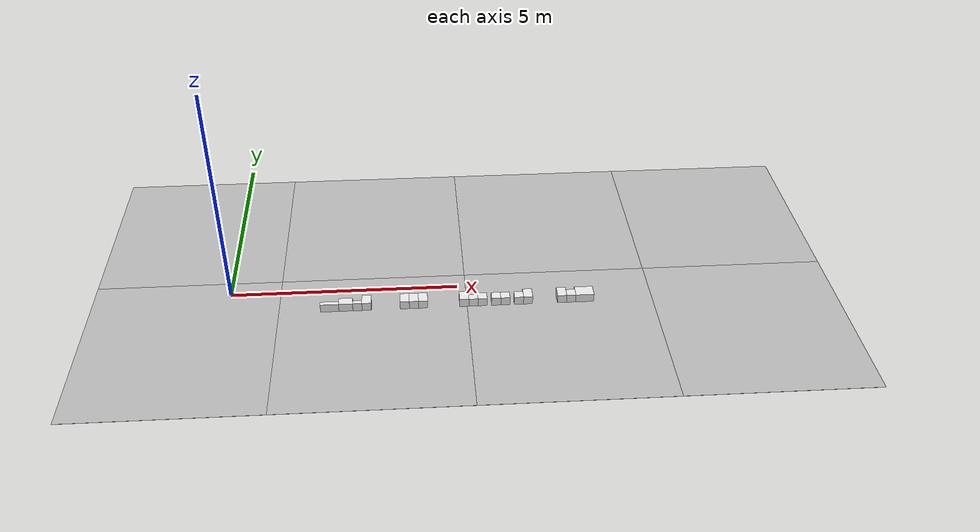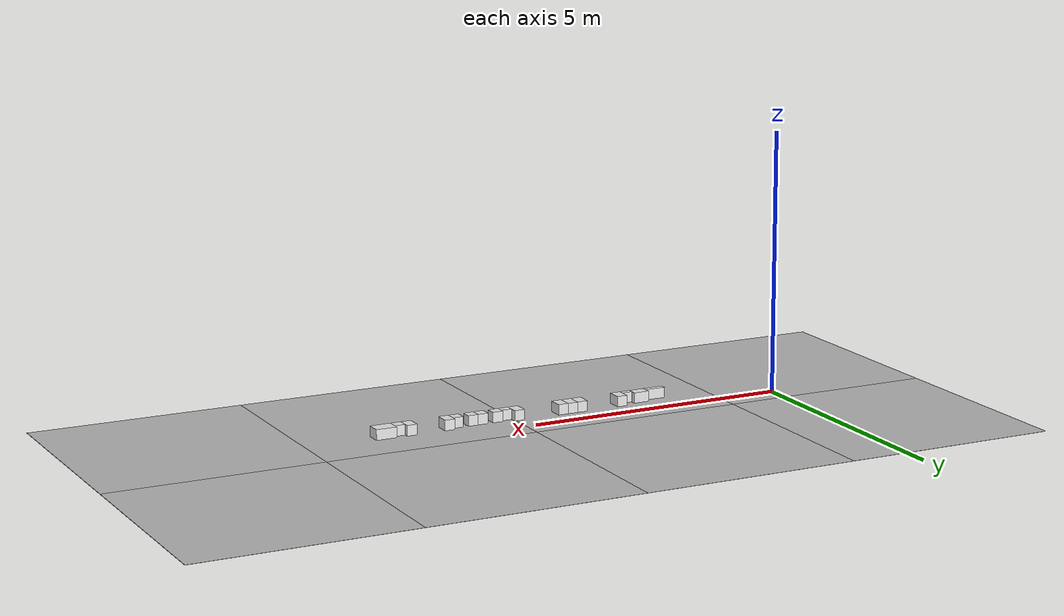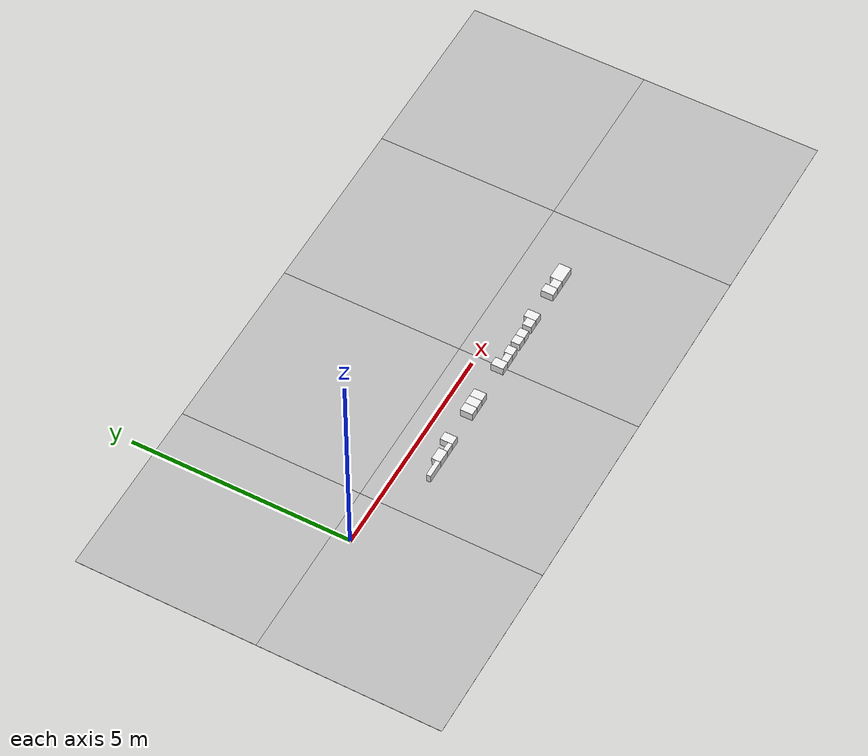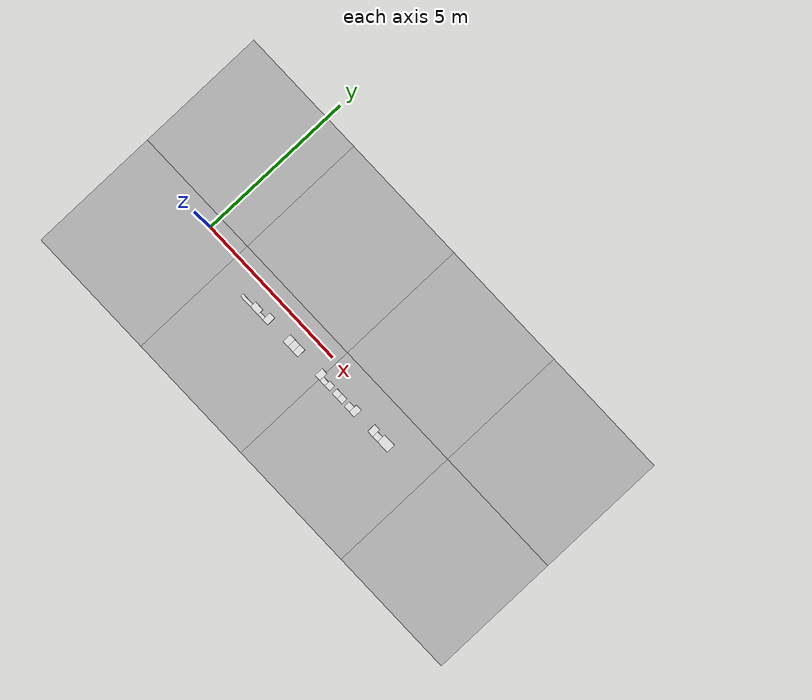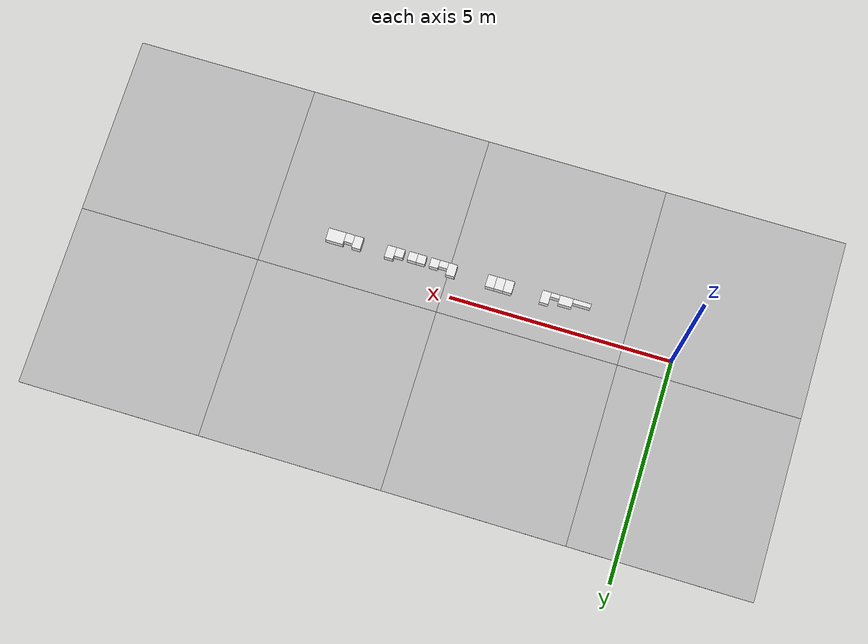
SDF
<sdf version='1.6'><world name='default'>
    <light name='sun_light' type='directional'>
      <pose frame=''>0 0 10 0 -0 0</pose>
      <diffuse>0.5 0.5 0.5 1</diffuse>
      <specular>0.1 0.1 0.1 1</specular>
      <direction>0.1 0.1 -0.9</direction>
      <attenuation>
        <range>20</range>
        <constant>0.5</constant>
        <linear>0.01</linear>
        <quadratic>0.001</quadratic>
      </attenuation>
      <cast_shadows>1</cast_shadows>
    </light>

    <model name='Tile/0-0'>
      <static>1</static>
      <link name='link'>
        <collision name='collision'>
          <geometry>
            <plane>
              <normal>0 0 1</normal>
              <size>4.096 4.096</size>
            </plane>
          </geometry>
          <surface>
            <friction>
              <ode>
                <mu>100</mu>
                <mu2>50</mu2>
              </ode>
              <torsional>
                <ode/>
              </torsional>
            </friction>
            <contact>
              <ode/>
            </contact>
            <bounce/>
          </surface>
          <max_contacts>10</max_contacts>
        </collision>
        <visual name='visual'>
          <cast_shadows>0</cast_shadows>
          <geometry>
            <plane>
              <normal>0 0 1</normal>
              <size>4.096 4.096</size>
            </plane>
          </geometry>
          <material>
            <script>
              <uri>file://materials/scripts</uri>
              <uri>file://materials/textures</uri>
              <name>Tile/aa44efc093d15b0d016b671cb8dad8b9b5925cd42bc6b331ef31decf4ba6863e</name>
            </script>
          </material>
        </visual>
        <self_collide>0</self_collide>
        <enable_wind>0</enable_wind>
        <kinematic>0</kinematic>
      </link>
      <pose frame=''>-0.952 -1.6520000000000001 0 0 -0 0</pose>
    </model>

    <model name='Tile/0-1'>
      <static>1</static>
      <link name='link'>
        <collision name='collision'>
          <geometry>
            <plane>
              <normal>0 0 1</normal>
              <size>4.096 4.096</size>
            </plane>
          </geometry>
          <surface>
            <friction>
              <ode>
                <mu>100</mu>
                <mu2>50</mu2>
              </ode>
              <torsional>
                <ode/>
              </torsional>
            </friction>
            <contact>
              <ode/>
            </contact>
            <bounce/>
          </surface>
          <max_contacts>10</max_contacts>
        </collision>
        <visual name='visual'>
          <cast_shadows>0</cast_shadows>
          <geometry>
            <plane>
              <normal>0 0 1</normal>
              <size>4.096 4.096</size>
            </plane>
          </geometry>
          <material>
            <script>
              <uri>file://materials/scripts</uri>
              <uri>file://materials/textures</uri>
              <name>Tile/6681b896b1587d54cb69aadeb5fb7247b4d6d500490292053e67105ac88ca889</name>
            </script>
          </material>
        </visual>
        <self_collide>0</self_collide>
        <enable_wind>0</enable_wind>
        <kinematic>0</kinematic>
      </link>
      <pose frame=''>-0.952 2.444 0 0 -0 0</pose>
    </model>

    <model name='Tile/1-0'>
      <static>1</static>
      <link name='link'>
        <collision name='collision'>
          <geometry>
            <plane>
              <normal>0 0 1</normal>
              <size>4.096 4.096</size>
            </plane>
          </geometry>
          <surface>
            <friction>
              <ode>
                <mu>100</mu>
                <mu2>50</mu2>
              </ode>
              <torsional>
                <ode/>
              </torsional>
            </friction>
            <contact>
              <ode/>
            </contact>
            <bounce/>
          </surface>
          <max_contacts>10</max_contacts>
        </collision>
        <visual name='visual'>
          <cast_shadows>0</cast_shadows>
          <geometry>
            <plane>
              <normal>0 0 1</normal>
              <size>4.096 4.096</size>
            </plane>
          </geometry>
          <material>
            <script>
              <uri>file://materials/scripts</uri>
              <uri>file://materials/textures</uri>
              <name>Tile/eac2e5be5d13b0e8a2cf2cacb9a2c81a775ff621da0c8b18af98c29163fb5643</name>
            </script>
          </material>
        </visual>
        <self_collide>0</self_collide>
        <enable_wind>0</enable_wind>
        <kinematic>0</kinematic>
      </link>
      <pose frame=''>3.144 -1.6520000000000001 0 0 -0 0</pose>
    </model>

    <model name='Tile/1-1'>
      <static>1</static>
      <link name='link'>
        <collision name='collision'>
          <geometry>
            <plane>
              <normal>0 0 1</normal>
              <size>4.096 4.096</size>
            </plane>
          </geometry>
          <surface>
            <friction>
              <ode>
                <mu>100</mu>
                <mu2>50</mu2>
              </ode>
              <torsional>
                <ode/>
              </torsional>
            </friction>
            <contact>
              <ode/>
            </contact>
            <bounce/>
          </surface>
          <max_contacts>10</max_contacts>
        </collision>
        <visual name='visual'>
          <cast_shadows>0</cast_shadows>
          <geometry>
            <plane>
              <normal>0 0 1</normal>
              <size>4.096 4.096</size>
            </plane>
          </geometry>
          <material>
            <script>
              <uri>file://materials/scripts</uri>
              <uri>file://materials/textures</uri>
              <name>Tile/13957a6de1f2afce18d7f1f64dacc2f21295e26ccf498256b0e1a51002cd5706</name>
            </script>
          </material>
        </visual>
        <self_collide>0</self_collide>
        <enable_wind>0</enable_wind>
        <kinematic>0</kinematic>
      </link>
      <pose frame=''>3.144 2.444 0 0 -0 0</pose>
    </model>

    <model name='Tile/2-0'>
      <static>1</static>
      <link name='link'>
        <collision name='collision'>
          <geometry>
            <plane>
              <normal>0 0 1</normal>
              <size>4.096 4.096</size>
            </plane>
          </geometry>
          <surface>
            <friction>
              <ode>
                <mu>100</mu>
                <mu2>50</mu2>
              </ode>
              <torsional>
                <ode/>
              </torsional>
            </friction>
            <contact>
              <ode/>
            </contact>
            <bounce/>
          </surface>
          <max_contacts>10</max_contacts>
        </collision>
        <visual name='visual'>
          <cast_shadows>0</cast_shadows>
          <geometry>
            <plane>
              <normal>0 0 1</normal>
              <size>4.096 4.096</size>
            </plane>
          </geometry>
          <material>
            <script>
              <uri>file://materials/scripts</uri>
              <uri>file://materials/textures</uri>
              <name>Tile/d8668b8f5941058ba5019b295a7eaf723689db8f8c3a860f50cbb11693da5ad2</name>
            </script>
          </material>
        </visual>
        <self_collide>0</self_collide>
        <enable_wind>0</enable_wind>
        <kinematic>0</kinematic>
      </link>
      <pose frame=''>7.24 -1.6520000000000001 0 0 -0 0</pose>
    </model>

    <model name='Tile/2-1'>
      <static>1</static>
      <link name='link'>
        <collision name='collision'>
          <geometry>
            <plane>
              <normal>0 0 1</normal>
              <size>4.096 4.096</size>
            </plane>
          </geometry>
          <surface>
            <friction>
              <ode>
                <mu>100</mu>
                <mu2>50</mu2>
              </ode>
              <torsional>
                <ode/>
              </torsional>
            </friction>
            <contact>
              <ode/>
            </contact>
            <bounce/>
          </surface>
          <max_contacts>10</max_contacts>
        </collision>
        <visual name='visual'>
          <cast_shadows>0</cast_shadows>
          <geometry>
            <plane>
              <normal>0 0 1</normal>
              <size>4.096 4.096</size>
            </plane>
          </geometry>
          <material>
            <script>
              <uri>file://materials/scripts</uri>
              <uri>file://materials/textures</uri>
              <name>Tile/13957a6de1f2afce18d7f1f64dacc2f21295e26ccf498256b0e1a51002cd5706</name>
            </script>
          </material>
        </visual>
        <self_collide>0</self_collide>
        <enable_wind>0</enable_wind>
        <kinematic>0</kinematic>
      </link>
      <pose frame=''>7.24 2.444 0 0 -0 0</pose>
    </model>

    <model name='Tile/3-0'>
      <static>1</static>
      <link name='link'>
        <collision name='collision'>
          <geometry>
            <plane>
              <normal>0 0 1</normal>
              <size>4.096 4.096</size>
            </plane>
          </geometry>
          <surface>
            <friction>
              <ode>
                <mu>100</mu>
                <mu2>50</mu2>
              </ode>
              <torsional>
                <ode/>
              </torsional>
            </friction>
            <contact>
              <ode/>
            </contact>
            <bounce/>
          </surface>
          <max_contacts>10</max_contacts>
        </collision>
        <visual name='visual'>
          <cast_shadows>0</cast_shadows>
          <geometry>
            <plane>
              <normal>0 0 1</normal>
              <size>4.096 4.096</size>
            </plane>
          </geometry>
          <material>
            <script>
              <uri>file://materials/scripts</uri>
              <uri>file://materials/textures</uri>
              <name>Tile/6f6040bef4d42f9d15bfe1cac2798321f0b066d3c6650b2501bf7cefd4cde4eb</name>
            </script>
          </material>
        </visual>
        <self_collide>0</self_collide>
        <enable_wind>0</enable_wind>
        <kinematic>0</kinematic>
      </link>
      <pose frame=''>11.336 -1.6520000000000001 0 0 -0 0</pose>
    </model>

    <model name='Tile/3-1'>
      <static>1</static>
      <link name='link'>
        <collision name='collision'>
          <geometry>
            <plane>
              <normal>0 0 1</normal>
              <size>4.096 4.096</size>
            </plane>
          </geometry>
          <surface>
            <friction>
              <ode>
                <mu>100</mu>
                <mu2>50</mu2>
              </ode>
              <torsional>
                <ode/>
              </torsional>
            </friction>
            <contact>
              <ode/>
            </contact>
            <bounce/>
          </surface>
          <max_contacts>10</max_contacts>
        </collision>
        <visual name='visual'>
          <cast_shadows>0</cast_shadows>
          <geometry>
            <plane>
              <normal>0 0 1</normal>
              <size>4.096 4.096</size>
            </plane>
          </geometry>
          <material>
            <script>
              <uri>file://materials/scripts</uri>
              <uri>file://materials/textures</uri>
              <name>Tile/645e4de11e43fb4a2eacb9a8c7d717bcfff32a13dfbd190f93559dca6052abb8</name>
            </script>
          </material>
        </visual>
        <self_collide>0</self_collide>
        <enable_wind>0</enable_wind>
        <kinematic>0</kinematic>
      </link>
      <pose frame=''>11.336 2.444 0 0 -0 0</pose>
    </model>

    <model name='Obstacle/-5/0'>
      <pose frame=''>2.2 -0.6499999999999999 0.1 0 0 -0.0</pose>
      <link name='link'>
        <inertial>
          <mass>10</mass>
          <inertia>
            <ixx>0.166667</ixx>
            <ixy>0</ixy>
            <ixz>0</ixz>
            <iyy>0.166667</iyy>
            <iyz>0</iyz>
            <izz>0.166667</izz>
          </inertia>
        </inertial>
        <collision name='collision'>
          <geometry>
            <box>
              <size>0.4 0.1 0.2</size>
            </box>
          </geometry>
          <max_contacts>10</max_contacts>
          <surface>
            <contact>
              <ode/>
            </contact>
            <bounce/>
            <friction>
              <torsional>
                <ode/>
              </torsional>
              <ode/>
            </friction>
          </surface>
        </collision>
        <visual name='visual'>
          <geometry>
            <box>
              <size>0.4 0.1 0.2</size>
            </box>
          </geometry>
          <material>
            <script>
              <name>Gazebo/White</name>
              <uri>file://media/materials/scripts/gazebo.material</uri>
            </script>
          </material>
        </visual>
        <self_collide>0</self_collide>
        <enable_wind>0</enable_wind>
        <kinematic>0</kinematic>
      </link>
    </model>

    <model name='Obstacle/-9/0'>
      <pose frame=''>2.55 -0.6 0.1 0 0 -0.0</pose>
      <link name='link'>
        <inertial>
          <mass>10</mass>
          <inertia>
            <ixx>0.166667</ixx>
            <ixy>0</ixy>
            <ixz>0</ixz>
            <iyy>0.166667</iyy>
            <iyz>0</iyz>
            <izz>0.166667</izz>
          </inertia>
        </inertial>
        <collision name='collision'>
          <geometry>
            <box>
              <size>0.3 0.2 0.2</size>
            </box>
          </geometry>
          <max_contacts>10</max_contacts>
          <surface>
            <contact>
              <ode/>
            </contact>
            <bounce/>
            <friction>
              <torsional>
                <ode/>
              </torsional>
              <ode/>
            </friction>
          </surface>
        </collision>
        <visual name='visual'>
          <geometry>
            <box>
              <size>0.3 0.2 0.2</size>
            </box>
          </geometry>
          <material>
            <script>
              <name>Gazebo/White</name>
              <uri>file://media/materials/scripts/gazebo.material</uri>
            </script>
          </material>
        </visual>
        <self_collide>0</self_collide>
        <enable_wind>0</enable_wind>
        <kinematic>0</kinematic>
      </link>
    </model>

    <model name='Obstacle/-13/0'>
      <pose frame=''>2.8 -0.6499999999999999 0.1 0 0 -0.0</pose>
      <link name='link'>
        <inertial>
          <mass>10</mass>
          <inertia>
            <ixx>0.166667</ixx>
            <ixy>0</ixy>
            <ixz>0</ixz>
            <iyy>0.166667</iyy>
            <iyz>0</iyz>
            <izz>0.166667</izz>
          </inertia>
        </inertial>
        <collision name='collision'>
          <geometry>
            <box>
              <size>0.2 0.1 0.2</size>
            </box>
          </geometry>
          <max_contacts>10</max_contacts>
          <surface>
            <contact>
              <ode/>
            </contact>
            <bounce/>
            <friction>
              <torsional>
                <ode/>
              </torsional>
              <ode/>
            </friction>
          </surface>
        </collision>
        <visual name='visual'>
          <geometry>
            <box>
              <size>0.2 0.1 0.2</size>
            </box>
          </geometry>
          <material>
            <script>
              <name>Gazebo/White</name>
              <uri>file://media/materials/scripts/gazebo.material</uri>
            </script>
          </material>
        </visual>
        <self_collide>0</self_collide>
        <enable_wind>0</enable_wind>
        <kinematic>0</kinematic>
      </link>
    </model>

    <model name='Obstacle/-17/0'>
      <pose frame=''>3.0 -0.5599999999999999 0.1 0 0 -0.0</pose>
      <link name='link'>
        <inertial>
          <mass>10</mass>
          <inertia>
            <ixx>0.166667</ixx>
            <ixy>0</ixy>
            <ixz>0</ixz>
            <iyy>0.166667</iyy>
            <iyz>0</iyz>
            <izz>0.166667</izz>
          </inertia>
        </inertial>
        <collision name='collision'>
          <geometry>
            <box>
              <size>0.2 0.28 0.2</size>
            </box>
          </geometry>
          <max_contacts>10</max_contacts>
          <surface>
            <contact>
              <ode/>
            </contact>
            <bounce/>
            <friction>
              <torsional>
                <ode/>
              </torsional>
              <ode/>
            </friction>
          </surface>
        </collision>
        <visual name='visual'>
          <geometry>
            <box>
              <size>0.2 0.28 0.2</size>
            </box>
          </geometry>
          <material>
            <script>
              <name>Gazebo/White</name>
              <uri>file://media/materials/scripts/gazebo.material</uri>
            </script>
          </material>
        </visual>
        <self_collide>0</self_collide>
        <enable_wind>0</enable_wind>
        <kinematic>0</kinematic>
      </link>
    </model>

    <model name='Obstacle/-24/0'>
      <pose frame=''>3.83 -0.5599999999999999 0.1 0 0 -0.0</pose>
      <link name='link'>
        <inertial>
          <mass>10</mass>
          <inertia>
            <ixx>0.166667</ixx>
            <ixy>0</ixy>
            <ixz>0</ixz>
            <iyy>0.166667</iyy>
            <iyz>0</iyz>
            <izz>0.166667</izz>
          </inertia>
        </inertial>
        <collision name='collision'>
          <geometry>
            <box>
              <size>0.2 0.28 0.2</size>
            </box>
          </geometry>
          <max_contacts>10</max_contacts>
          <surface>
            <contact>
              <ode/>
            </contact>
            <bounce/>
            <friction>
              <torsional>
                <ode/>
              </torsional>
              <ode/>
            </friction>
          </surface>
        </collision>
        <visual name='visual'>
          <geometry>
            <box>
              <size>0.2 0.28 0.2</size>
            </box>
          </geometry>
          <material>
            <script>
              <name>Gazebo/White</name>
              <uri>file://media/materials/scripts/gazebo.material</uri>
            </script>
          </material>
        </visual>
        <self_collide>0</self_collide>
        <enable_wind>0</enable_wind>
        <kinematic>0</kinematic>
      </link>
    </model>

    <model name='Obstacle/-28/0'>
      <pose frame=''>4.03 -0.5599999999999999 0.1 0 0 -0.0</pose>
      <link name='link'>
        <inertial>
          <mass>10</mass>
          <inertia>
            <ixx>0.166667</ixx>
            <ixy>0</ixy>
            <ixz>0</ixz>
            <iyy>0.166667</iyy>
            <iyz>0</iyz>
            <izz>0.166667</izz>
          </inertia>
        </inertial>
        <collision name='collision'>
          <geometry>
            <box>
              <size>0.2 0.28 0.2</size>
            </box>
          </geometry>
          <max_contacts>10</max_contacts>
          <surface>
            <contact>
              <ode/>
            </contact>
            <bounce/>
            <friction>
              <torsional>
                <ode/>
              </torsional>
              <ode/>
            </friction>
          </surface>
        </collision>
        <visual name='visual'>
          <geometry>
            <box>
              <size>0.2 0.28 0.2</size>
            </box>
          </geometry>
          <material>
            <script>
              <name>Gazebo/White</name>
              <uri>file://media/materials/scripts/gazebo.material</uri>
            </script>
          </material>
        </visual>
        <self_collide>0</self_collide>
        <enable_wind>0</enable_wind>
        <kinematic>0</kinematic>
      </link>
    </model>

    <model name='Obstacle/-32/0'>
      <pose frame=''>4.2299999999999995 -0.5599999999999999 0.1 0 0 -0.0</pose>
      <link name='link'>
        <inertial>
          <mass>10</mass>
          <inertia>
            <ixx>0.166667</ixx>
            <ixy>0</ixy>
            <ixz>0</ixz>
            <iyy>0.166667</iyy>
            <iyz>0</iyz>
            <izz>0.166667</izz>
          </inertia>
        </inertial>
        <collision name='collision'>
          <geometry>
            <box>
              <size>0.2 0.28 0.2</size>
            </box>
          </geometry>
          <max_contacts>10</max_contacts>
          <surface>
            <contact>
              <ode/>
            </contact>
            <bounce/>
            <friction>
              <torsional>
                <ode/>
              </torsional>
              <ode/>
            </friction>
          </surface>
        </collision>
        <visual name='visual'>
          <geometry>
            <box>
              <size>0.2 0.28 0.2</size>
            </box>
          </geometry>
          <material>
            <script>
              <name>Gazebo/White</name>
              <uri>file://media/materials/scripts/gazebo.material</uri>
            </script>
          </material>
        </visual>
        <self_collide>0</self_collide>
        <enable_wind>0</enable_wind>
        <kinematic>0</kinematic>
      </link>
    </model>

    <model name='Obstacle/-39/0'>
      <pose frame=''>5.13 -0.5599999999999999 0.1 0 0 -0.0</pose>
      <link name='link'>
        <inertial>
          <mass>10</mass>
          <inertia>
            <ixx>0.166667</ixx>
            <ixy>0</ixy>
            <ixz>0</ixz>
            <iyy>0.166667</iyy>
            <iyz>0</iyz>
            <izz>0.166667</izz>
          </inertia>
        </inertial>
        <collision name='collision'>
          <geometry>
            <box>
              <size>0.2 0.28 0.2</size>
            </box>
          </geometry>
          <max_contacts>10</max_contacts>
          <surface>
            <contact>
              <ode/>
            </contact>
            <bounce/>
            <friction>
              <torsional>
                <ode/>
              </torsional>
              <ode/>
            </friction>
          </surface>
        </collision>
        <visual name='visual'>
          <geometry>
            <box>
              <size>0.2 0.28 0.2</size>
            </box>
          </geometry>
          <material>
            <script>
              <name>Gazebo/White</name>
              <uri>file://media/materials/scripts/gazebo.material</uri>
            </script>
          </material>
        </visual>
        <self_collide>0</self_collide>
        <enable_wind>0</enable_wind>
        <kinematic>0</kinematic>
      </link>
    </model>

    <model name='Obstacle/-43/0'>
      <pose frame=''>5.33 -0.625 0.1 0 0 -0.0</pose>
      <link name='link'>
        <inertial>
          <mass>10</mass>
          <inertia>
            <ixx>0.166667</ixx>
            <ixy>0</ixy>
            <ixz>0</ixz>
            <iyy>0.166667</iyy>
            <iyz>0</iyz>
            <izz>0.166667</izz>
          </inertia>
        </inertial>
        <collision name='collision'>
          <geometry>
            <box>
              <size>0.2 0.15 0.2</size>
            </box>
          </geometry>
          <max_contacts>10</max_contacts>
          <surface>
            <contact>
              <ode/>
            </contact>
            <bounce/>
            <friction>
              <torsional>
                <ode/>
              </torsional>
              <ode/>
            </friction>
          </surface>
        </collision>
        <visual name='visual'>
          <geometry>
            <box>
              <size>0.2 0.15 0.2</size>
            </box>
          </geometry>
          <material>
            <script>
              <name>Gazebo/White</name>
              <uri>file://media/materials/scripts/gazebo.material</uri>
            </script>
          </material>
        </visual>
        <self_collide>0</self_collide>
        <enable_wind>0</enable_wind>
        <kinematic>0</kinematic>
      </link>
    </model>

    <model name='Obstacle/-47/0'>
      <pose frame=''>5.53 -0.6 0.1 0 0 -0.0</pose>
      <link name='link'>
        <inertial>
          <mass>10</mass>
          <inertia>
            <ixx>0.166667</ixx>
            <ixy>0</ixy>
            <ixz>0</ixz>
            <iyy>0.166667</iyy>
            <iyz>0</iyz>
            <izz>0.166667</izz>
          </inertia>
        </inertial>
        <collision name='collision'>
          <geometry>
            <box>
              <size>0.2 0.2 0.2</size>
            </box>
          </geometry>
          <max_contacts>10</max_contacts>
          <surface>
            <contact>
              <ode/>
            </contact>
            <bounce/>
            <friction>
              <torsional>
                <ode/>
              </torsional>
              <ode/>
            </friction>
          </surface>
        </collision>
        <visual name='visual'>
          <geometry>
            <box>
              <size>0.2 0.2 0.2</size>
            </box>
          </geometry>
          <material>
            <script>
              <name>Gazebo/White</name>
              <uri>file://media/materials/scripts/gazebo.material</uri>
            </script>
          </material>
        </visual>
        <self_collide>0</self_collide>
        <enable_wind>0</enable_wind>
        <kinematic>0</kinematic>
      </link>
    </model>

    <model name='Obstacle/-54/0'>
      <pose frame=''>5.83 -0.6 0.1 0 0 -0.0</pose>
      <link name='link'>
        <inertial>
          <mass>10</mass>
          <inertia>
            <ixx>0.166667</ixx>
            <ixy>0</ixy>
            <ixz>0</ixz>
            <iyy>0.166667</iyy>
            <iyz>0</iyz>
            <izz>0.166667</izz>
          </inertia>
        </inertial>
        <collision name='collision'>
          <geometry>
            <box>
              <size>0.2 0.2 0.2</size>
            </box>
          </geometry>
          <max_contacts>10</max_contacts>
          <surface>
            <contact>
              <ode/>
            </contact>
            <bounce/>
            <friction>
              <torsional>
                <ode/>
              </torsional>
              <ode/>
            </friction>
          </surface>
        </collision>
        <visual name='visual'>
          <geometry>
            <box>
              <size>0.2 0.2 0.2</size>
            </box>
          </geometry>
          <material>
            <script>
              <name>Gazebo/White</name>
              <uri>file://media/materials/scripts/gazebo.material</uri>
            </script>
          </material>
        </visual>
        <self_collide>0</self_collide>
        <enable_wind>0</enable_wind>
        <kinematic>0</kinematic>
      </link>
    </model>

    <model name='Obstacle/-58/0'>
      <pose frame=''>6.03 -0.6 0.1 0 0 -0.0</pose>
      <link name='link'>
        <inertial>
          <mass>10</mass>
          <inertia>
            <ixx>0.166667</ixx>
            <ixy>0</ixy>
            <ixz>0</ixz>
            <iyy>0.166667</iyy>
            <iyz>0</iyz>
            <izz>0.166667</izz>
          </inertia>
        </inertial>
        <collision name='collision'>
          <geometry>
            <box>
              <size>0.2 0.2 0.2</size>
            </box>
          </geometry>
          <max_contacts>10</max_contacts>
          <surface>
            <contact>
              <ode/>
            </contact>
            <bounce/>
            <friction>
              <torsional>
                <ode/>
              </torsional>
              <ode/>
            </friction>
          </surface>
        </collision>
        <visual name='visual'>
          <geometry>
            <box>
              <size>0.2 0.2 0.2</size>
            </box>
          </geometry>
          <material>
            <script>
              <name>Gazebo/White</name>
              <uri>file://media/materials/scripts/gazebo.material</uri>
            </script>
          </material>
        </visual>
        <self_collide>0</self_collide>
        <enable_wind>0</enable_wind>
        <kinematic>0</kinematic>
      </link>
    </model>

    <model name='Obstacle/-65/0'>
      <pose frame=''>6.33 -0.6 0.1 0 0 -0.0</pose>
      <link name='link'>
        <inertial>
          <mass>10</mass>
          <inertia>
            <ixx>0.166667</ixx>
            <ixy>0</ixy>
            <ixz>0</ixz>
            <iyy>0.166667</iyy>
            <iyz>0</iyz>
            <izz>0.166667</izz>
          </inertia>
        </inertial>
        <collision name='collision'>
          <geometry>
            <box>
              <size>0.2 0.2 0.2</size>
            </box>
          </geometry>
          <max_contacts>10</max_contacts>
          <surface>
            <contact>
              <ode/>
            </contact>
            <bounce/>
            <friction>
              <torsional>
                <ode/>
              </torsional>
              <ode/>
            </friction>
          </surface>
        </collision>
        <visual name='visual'>
          <geometry>
            <box>
              <size>0.2 0.2 0.2</size>
            </box>
          </geometry>
          <material>
            <script>
              <name>Gazebo/White</name>
              <uri>file://media/materials/scripts/gazebo.material</uri>
            </script>
          </material>
        </visual>
        <self_collide>0</self_collide>
        <enable_wind>0</enable_wind>
        <kinematic>0</kinematic>
      </link>
    </model>

    <model name='Obstacle/-69/0'>
      <pose frame=''>6.53 -0.5599999999999999 0.1 0 0 -0.0</pose>
      <link name='link'>
        <inertial>
          <mass>10</mass>
          <inertia>
            <ixx>0.166667</ixx>
            <ixy>0</ixy>
            <ixz>0</ixz>
            <iyy>0.166667</iyy>
            <iyz>0</iyz>
            <izz>0.166667</izz>
          </inertia>
        </inertial>
        <collision name='collision'>
          <geometry>
            <box>
              <size>0.2 0.28 0.2</size>
            </box>
          </geometry>
          <max_contacts>10</max_contacts>
          <surface>
            <contact>
              <ode/>
            </contact>
            <bounce/>
            <friction>
              <torsional>
                <ode/>
              </torsional>
              <ode/>
            </friction>
          </surface>
        </collision>
        <visual name='visual'>
          <geometry>
            <box>
              <size>0.2 0.28 0.2</size>
            </box>
          </geometry>
          <material>
            <script>
              <name>Gazebo/White</name>
              <uri>file://media/materials/scripts/gazebo.material</uri>
            </script>
          </material>
        </visual>
        <self_collide>0</self_collide>
        <enable_wind>0</enable_wind>
        <kinematic>0</kinematic>
      </link>
    </model>

    <model name='Obstacle/-76/0'>
      <pose frame=''>7.28 -0.5599999999999999 0.1 0 0 -0.0</pose>
      <link name='link'>
        <inertial>
          <mass>10</mass>
          <inertia>
            <ixx>0.166667</ixx>
            <ixy>0</ixy>
            <ixz>0</ixz>
            <iyy>0.166667</iyy>
            <iyz>0</iyz>
            <izz>0.166667</izz>
          </inertia>
        </inertial>
        <collision name='collision'>
          <geometry>
            <box>
              <size>0.2 0.28 0.2</size>
            </box>
          </geometry>
          <max_contacts>10</max_contacts>
          <surface>
            <contact>
              <ode/>
            </contact>
            <bounce/>
            <friction>
              <torsional>
                <ode/>
              </torsional>
              <ode/>
            </friction>
          </surface>
        </collision>
        <visual name='visual'>
          <geometry>
            <box>
              <size>0.2 0.28 0.2</size>
            </box>
          </geometry>
          <material>
            <script>
              <name>Gazebo/White</name>
              <uri>file://media/materials/scripts/gazebo.material</uri>
            </script>
          </material>
        </visual>
        <self_collide>0</self_collide>
        <enable_wind>0</enable_wind>
        <kinematic>0</kinematic>
      </link>
    </model>

    <model name='Obstacle/-80/0'>
      <pose frame=''>7.48 -0.6 0.1 0 0 -0.0</pose>
      <link name='link'>
        <inertial>
          <mass>10</mass>
          <inertia>
            <ixx>0.166667</ixx>
            <ixy>0</ixy>
            <ixz>0</ixz>
            <iyy>0.166667</iyy>
            <iyz>0</iyz>
            <izz>0.166667</izz>
          </inertia>
        </inertial>
        <collision name='collision'>
          <geometry>
            <box>
              <size>0.2 0.2 0.2</size>
            </box>
          </geometry>
          <max_contacts>10</max_contacts>
          <surface>
            <contact>
              <ode/>
            </contact>
            <bounce/>
            <friction>
              <torsional>
                <ode/>
              </torsional>
              <ode/>
            </friction>
          </surface>
        </collision>
        <visual name='visual'>
          <geometry>
            <box>
              <size>0.2 0.2 0.2</size>
            </box>
          </geometry>
          <material>
            <script>
              <name>Gazebo/White</name>
              <uri>file://media/materials/scripts/gazebo.material</uri>
            </script>
          </material>
        </visual>
        <self_collide>0</self_collide>
        <enable_wind>0</enable_wind>
        <kinematic>0</kinematic>
      </link>
    </model>

    <model name='Obstacle/-84/0'>
      <pose frame=''>7.780000000000001 -0.5599999999999999 0.1 0 0 -0.0</pose>
      <link name='link'>
        <inertial>
          <mass>10</mass>
          <inertia>
            <ixx>0.166667</ixx>
            <ixy>0</ixy>
            <ixz>0</ixz>
            <iyy>0.166667</iyy>
            <iyz>0</iyz>
            <izz>0.166667</izz>
          </inertia>
        </inertial>
        <collision name='collision'>
          <geometry>
            <box>
              <size>0.4 0.28 0.2</size>
            </box>
          </geometry>
          <max_contacts>10</max_contacts>
          <surface>
            <contact>
              <ode/>
            </contact>
            <bounce/>
            <friction>
              <torsional>
                <ode/>
              </torsional>
              <ode/>
            </friction>
          </surface>
        </collision>
        <visual name='visual'>
          <geometry>
            <box>
              <size>0.4 0.28 0.2</size>
            </box>
          </geometry>
          <material>
            <script>
              <name>Gazebo/White</name>
              <uri>file://media/materials/scripts/gazebo.material</uri>
            </script>
          </material>
        </visual>
        <self_collide>0</self_collide>
        <enable_wind>0</enable_wind>
        <kinematic>0</kinematic>
      </link>
    </model>
    </world></sdf>
